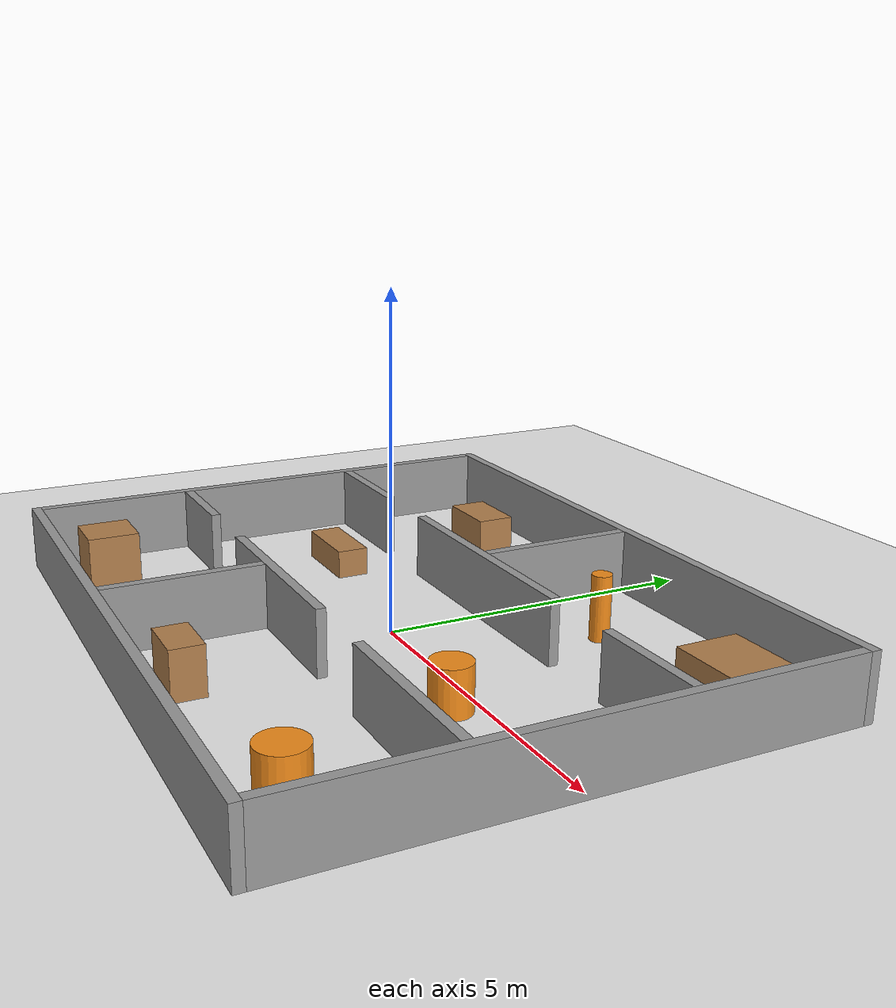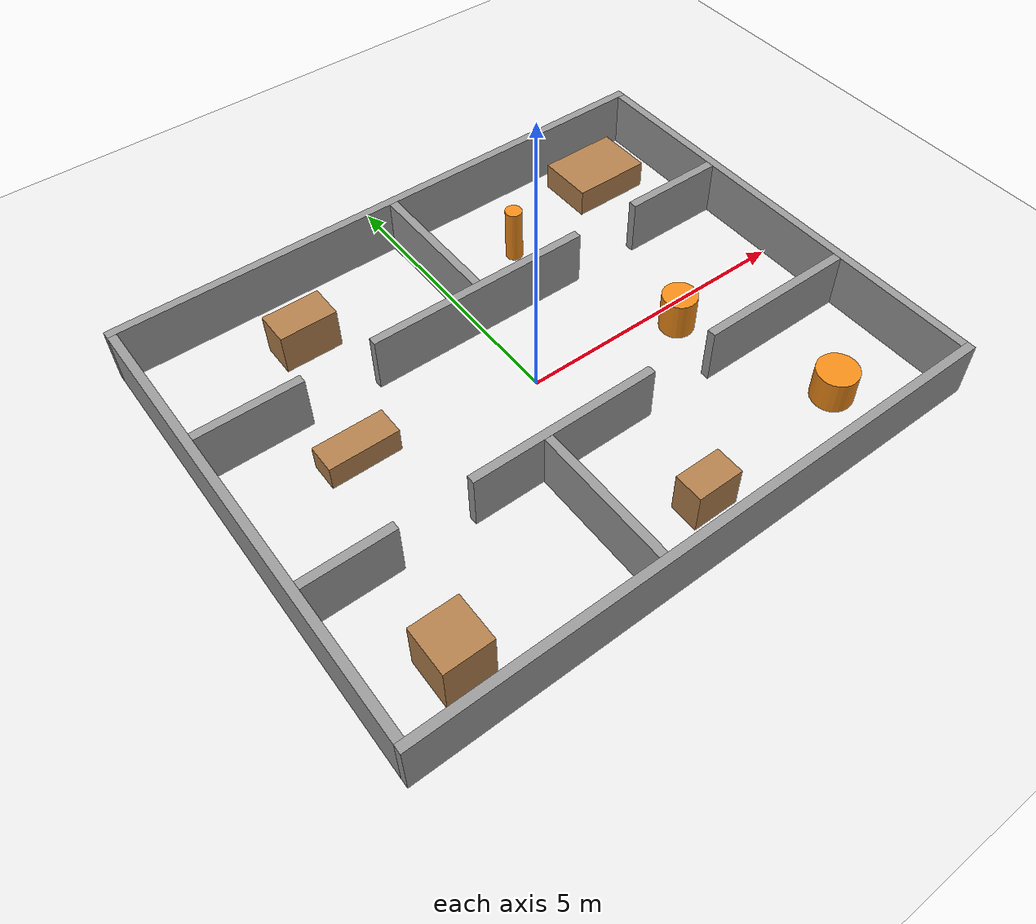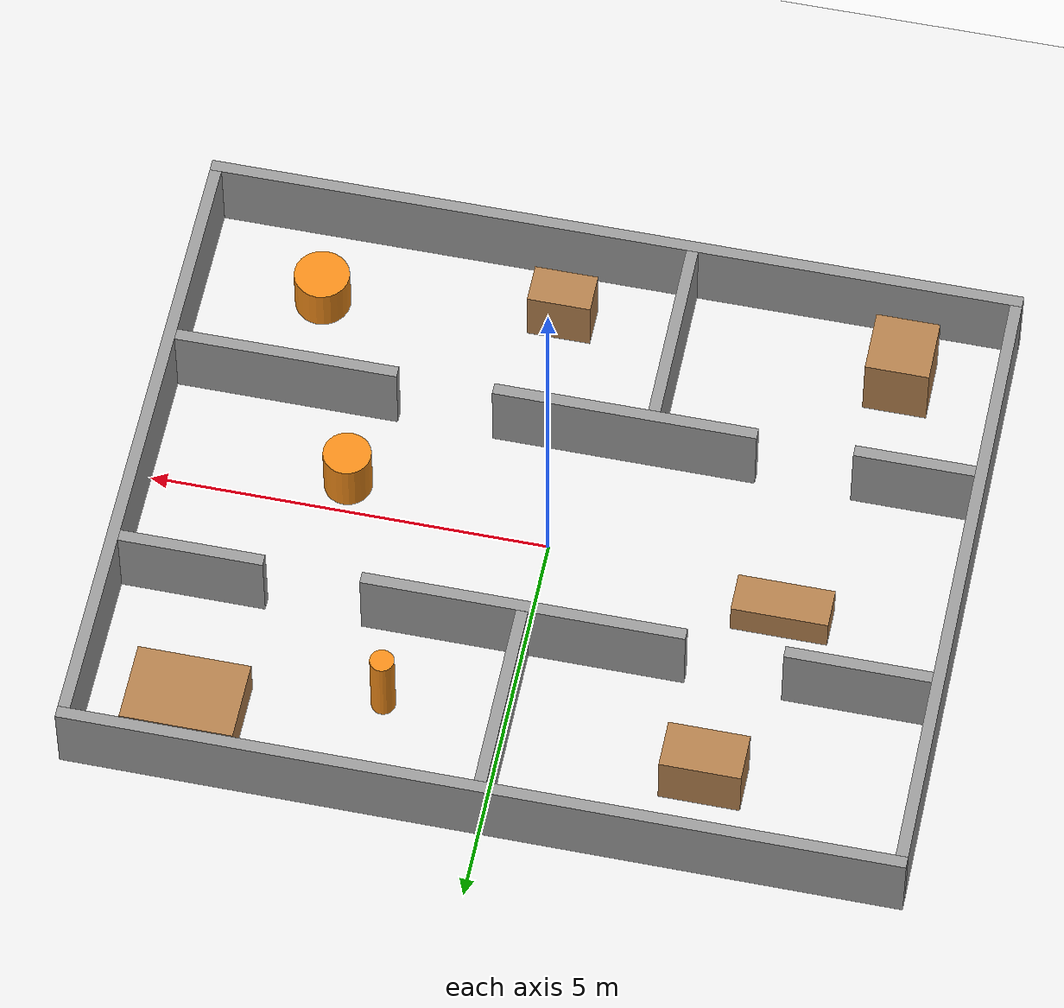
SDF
<?xml version="1.0"?>
<sdf version="1.6">
  <world name="floor_cleaner_world">

    <physics name="default_physics" type="ode">
      <max_step_size>0.001</max_step_size>
      <real_time_factor>1.0</real_time_factor>
      <real_time_update_rate>1000</real_time_update_rate>
    </physics>

    <scene>
      <ambient>0.6 0.6 0.6 1</ambient>
      <background>0.75 0.8 0.85 1</background>
      <shadows>false</shadows>
      <grid>false</grid>
    </scene>

    <gui fullscreen="0">
      <camera name="user_camera">
        <pose>0 -10.5 11 0 0.82 1.5708</pose>
        <view_controller>orbit</view_controller>
      </camera>
    </gui>

    <light name="sun" type="directional">
      <cast_shadows>false</cast_shadows>
      <pose>0 0 10 0 0 0</pose>
      <diffuse>0.9 0.9 0.9 1</diffuse>
      <specular>0.2 0.2 0.2 1</specular>
      <direction>-0.3 0.2 -0.9</direction>
    </light>

    <model name="ground_plane">
      <static>true</static>
      <link name="ground_link">
        <collision name="ground_collision">
          <geometry><plane><normal>0 0 1</normal><size>40 40</size></plane></geometry>
          <surface>
            <friction><ode><mu>1.0</mu><mu2>1.0</mu2></ode></friction>
          </surface>
        </collision>
        <visual name="ground_visual">
          <cast_shadows>false</cast_shadows>
          <geometry><plane><normal>0 0 1</normal><size>40 40</size></plane></geometry>
          <material><script><uri>file://media/materials/scripts/gazebo.material</uri><name>Gazebo/White</name></script></material>
        </visual>
      </link>
    </model>

    <model name="apartment_walls">
      <static>true</static>
      <link name="walls_link">
        <collision name='outer_north_collision'><pose>0.000 4.075 0.500 0 0 0</pose><geometry><box><size>10.300 0.150 1.000</size></box></geometry></collision>
        <visual name='outer_north_visual'><pose>0.000 4.075 0.500 0 0 0</pose><geometry><box><size>10.300 0.150 1.000</size></box></geometry>
          <material><script><uri>file://media/materials/scripts/gazebo.material</uri><name>Gazebo/Grey</name></script></material>
        </visual>
        <collision name='outer_south_collision'><pose>0.000 -4.075 0.500 0 0 0</pose><geometry><box><size>10.300 0.150 1.000</size></box></geometry></collision>
        <visual name='outer_south_visual'><pose>0.000 -4.075 0.500 0 0 0</pose><geometry><box><size>10.300 0.150 1.000</size></box></geometry>
          <material><script><uri>file://media/materials/scripts/gazebo.material</uri><name>Gazebo/Grey</name></script></material>
        </visual>
        <collision name='outer_east_collision'><pose>5.075 0.000 0.500 0 0 0</pose><geometry><box><size>0.150 8.000 1.000</size></box></geometry></collision>
        <visual name='outer_east_visual'><pose>5.075 0.000 0.500 0 0 0</pose><geometry><box><size>0.150 8.000 1.000</size></box></geometry>
          <material><script><uri>file://media/materials/scripts/gazebo.material</uri><name>Gazebo/Grey</name></script></material>
        </visual>
        <collision name='outer_west_collision'><pose>-5.075 0.000 0.500 0 0 0</pose><geometry><box><size>0.150 8.000 1.000</size></box></geometry></collision>
        <visual name='outer_west_visual'><pose>-5.075 0.000 0.500 0 0 0</pose><geometry><box><size>0.150 8.000 1.000</size></box></geometry>
          <material><script><uri>file://media/materials/scripts/gazebo.material</uri><name>Gazebo/Grey</name></script></material>
        </visual>
        <collision name='north_rooms_wall_a_collision'><pose>-4.100 1.500 0.500 0 0 0</pose><geometry><box><size>1.800 0.150 1.000</size></box></geometry></collision>
        <visual name='north_rooms_wall_a_visual'><pose>-4.100 1.500 0.500 0 0 0</pose><geometry><box><size>1.800 0.150 1.000</size></box></geometry>
          <material><script><uri>file://media/materials/scripts/gazebo.material</uri><name>Gazebo/Grey</name></script></material>
        </visual>
        <collision name='north_rooms_wall_b_collision'><pose>0.000 1.500 0.500 0 0 0</pose><geometry><box><size>4.000 0.150 1.000</size></box></geometry></collision>
        <visual name='north_rooms_wall_b_visual'><pose>0.000 1.500 0.500 0 0 0</pose><geometry><box><size>4.000 0.150 1.000</size></box></geometry>
          <material><script><uri>file://media/materials/scripts/gazebo.material</uri><name>Gazebo/Grey</name></script></material>
        </visual>
        <collision name='north_rooms_wall_c_collision'><pose>4.100 1.500 0.500 0 0 0</pose><geometry><box><size>1.800 0.150 1.000</size></box></geometry></collision>
        <visual name='north_rooms_wall_c_visual'><pose>4.100 1.500 0.500 0 0 0</pose><geometry><box><size>1.800 0.150 1.000</size></box></geometry>
          <material><script><uri>file://media/materials/scripts/gazebo.material</uri><name>Gazebo/Grey</name></script></material>
        </visual>
        <collision name='room1_room2_divider_collision'><pose>0.000 2.788 0.500 0 0 0</pose><geometry><box><size>0.150 2.425 1.000</size></box></geometry></collision>
        <visual name='room1_room2_divider_visual'><pose>0.000 2.788 0.500 0 0 0</pose><geometry><box><size>0.150 2.425 1.000</size></box></geometry>
          <material><script><uri>file://media/materials/scripts/gazebo.material</uri><name>Gazebo/Grey</name></script></material>
        </visual>
        <collision name='south_rooms_wall_a_collision'><pose>-4.250 -1.500 0.500 0 0 0</pose><geometry><box><size>1.500 0.150 1.000</size></box></geometry></collision>
        <visual name='south_rooms_wall_a_visual'><pose>-4.250 -1.500 0.500 0 0 0</pose><geometry><box><size>1.500 0.150 1.000</size></box></geometry>
          <material><script><uri>file://media/materials/scripts/gazebo.material</uri><name>Gazebo/Grey</name></script></material>
        </visual>
        <collision name='south_rooms_wall_b_collision'><pose>-0.650 -1.500 0.500 0 0 0</pose><geometry><box><size>3.300 0.150 1.000</size></box></geometry></collision>
        <visual name='south_rooms_wall_b_visual'><pose>-0.650 -1.500 0.500 0 0 0</pose><geometry><box><size>3.300 0.150 1.000</size></box></geometry>
          <material><script><uri>file://media/materials/scripts/gazebo.material</uri><name>Gazebo/Grey</name></script></material>
        </visual>
        <collision name='south_rooms_wall_c_collision'><pose>3.600 -1.500 0.500 0 0 0</pose><geometry><box><size>2.800 0.150 1.000</size></box></geometry></collision>
        <visual name='south_rooms_wall_c_visual'><pose>3.600 -1.500 0.500 0 0 0</pose><geometry><box><size>2.800 0.150 1.000</size></box></geometry>
          <material><script><uri>file://media/materials/scripts/gazebo.material</uri><name>Gazebo/Grey</name></script></material>
        </visual>
        <collision name='room3_room4_divider_collision'><pose>-1.000 -2.788 0.500 0 0 0</pose><geometry><box><size>0.150 2.425 1.000</size></box></geometry></collision>
        <visual name='room3_room4_divider_visual'><pose>-1.000 -2.788 0.500 0 0 0</pose><geometry><box><size>0.150 2.425 1.000</size></box></geometry>
          <material><script><uri>file://media/materials/scripts/gazebo.material</uri><name>Gazebo/Grey</name></script></material>
        </visual>
      </link>
    </model>

    <model name="furniture">
      <static>true</static>
      <link name="furniture_link">
        <collision name='hall_sofa_collision'><pose>-3.000 0.450 0.225 0 0 0</pose><geometry><box><size>1.200 0.500 0.450</size></box></geometry></collision>
        <visual name='hall_sofa_visual'><pose>-3.000 0.450 0.225 0 0 0</pose><geometry><box><size>1.200 0.500 0.450</size></box></geometry>
          <material><script><uri>file://media/materials/scripts/gazebo.material</uri><name>Gazebo/Wood</name></script></material>
        </visual>
        <collision name='room1_table_collision'><pose>-2.500 2.900 0.375 0 0 0</pose><geometry><box><size>1.000 0.600 0.750</size></box></geometry></collision>
        <visual name='room1_table_visual'><pose>-2.500 2.900 0.375 0 0 0</pose><geometry><box><size>1.000 0.600 0.750</size></box></geometry>
          <material><script><uri>file://media/materials/scripts/gazebo.material</uri><name>Gazebo/Wood</name></script></material>
        </visual>
        <collision name='room2_bed_collision'><pose>3.800 3.200 0.250 0 0 0</pose><geometry><box><size>1.400 1.000 0.500</size></box></geometry></collision>
        <visual name='room2_bed_visual'><pose>3.800 3.200 0.250 0 0 0</pose><geometry><box><size>1.400 1.000 0.500</size></box></geometry>
          <material><script><uri>file://media/materials/scripts/gazebo.material</uri><name>Gazebo/Wood</name></script></material>
        </visual>
        <collision name='room3_cabinet_collision'><pose>-3.800 -3.200 0.450 0 0 0</pose><geometry><box><size>0.800 0.800 0.900</size></box></geometry></collision>
        <visual name='room3_cabinet_visual'><pose>-3.800 -3.200 0.450 0 0 0</pose><geometry><box><size>0.800 0.800 0.900</size></box></geometry>
          <material><script><uri>file://media/materials/scripts/gazebo.material</uri><name>Gazebo/Wood</name></script></material>
        </visual>
        <collision name='room4_desk_collision'><pose>0.500 -3.300 0.375 0 0 0</pose><geometry><box><size>0.800 0.500 0.750</size></box></geometry></collision>
        <visual name='room4_desk_visual'><pose>0.500 -3.300 0.375 0 0 0</pose><geometry><box><size>0.800 0.500 0.750</size></box></geometry>
          <material><script><uri>file://media/materials/scripts/gazebo.material</uri><name>Gazebo/Wood</name></script></material>
        </visual>
        <collision name='hall_round_table_collision'><pose>2.600 -0.400 0.350 0 0 0</pose><geometry><cylinder><radius>0.300</radius><length>0.700</length></cylinder></geometry></collision>
        <visual name='hall_round_table_visual'><pose>2.600 -0.400 0.350 0 0 0</pose><geometry><cylinder><radius>0.300</radius><length>0.700</length></cylinder></geometry>
          <material><script><uri>file://media/materials/scripts/gazebo.material</uri><name>Gazebo/Orange</name></script></material>
        </visual>
        <collision name='room2_pillar_collision'><pose>1.500 2.600 0.500 0 0 0</pose><geometry><cylinder><radius>0.150</radius><length>1.000</length></cylinder></geometry></collision>
        <visual name='room2_pillar_visual'><pose>1.500 2.600 0.500 0 0 0</pose><geometry><cylinder><radius>0.150</radius><length>1.000</length></cylinder></geometry>
          <material><script><uri>file://media/materials/scripts/gazebo.material</uri><name>Gazebo/Orange</name></script></material>
        </visual>
        <collision name='room4_plant_pot_collision'><pose>3.500 -3.000 0.300 0 0 0</pose><geometry><cylinder><radius>0.350</radius><length>0.600</length></cylinder></geometry></collision>
        <visual name='room4_plant_pot_visual'><pose>3.500 -3.000 0.300 0 0 0</pose><geometry><cylinder><radius>0.350</radius><length>0.600</length></cylinder></geometry>
          <material><script><uri>file://media/materials/scripts/gazebo.material</uri><name>Gazebo/Orange</name></script></material>
        </visual>
      </link>
    </model>

  </world>
</sdf>
